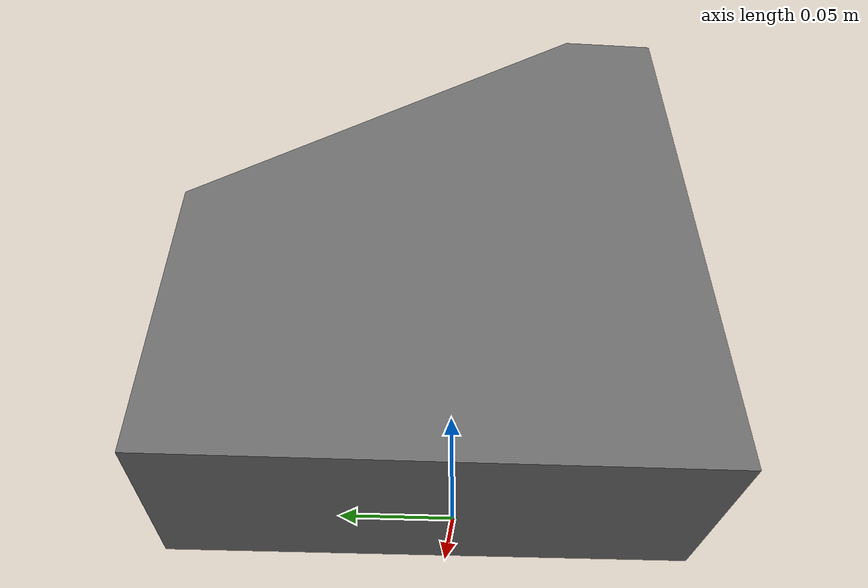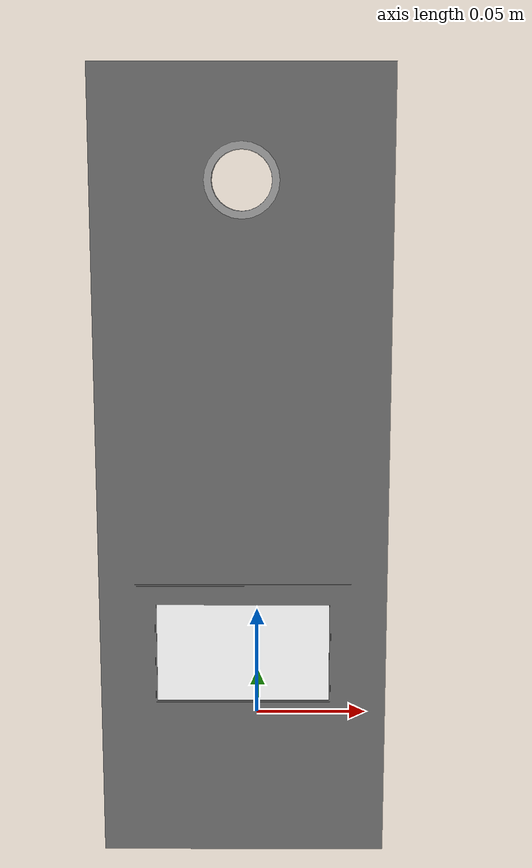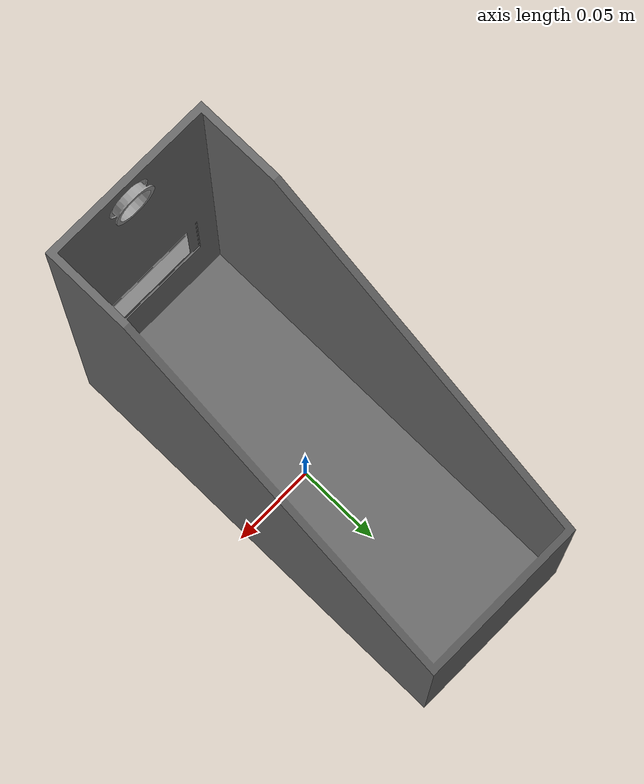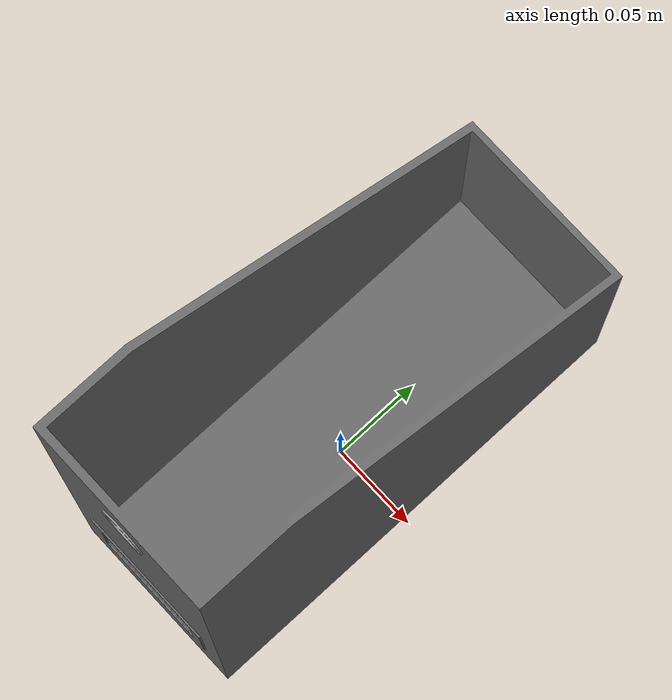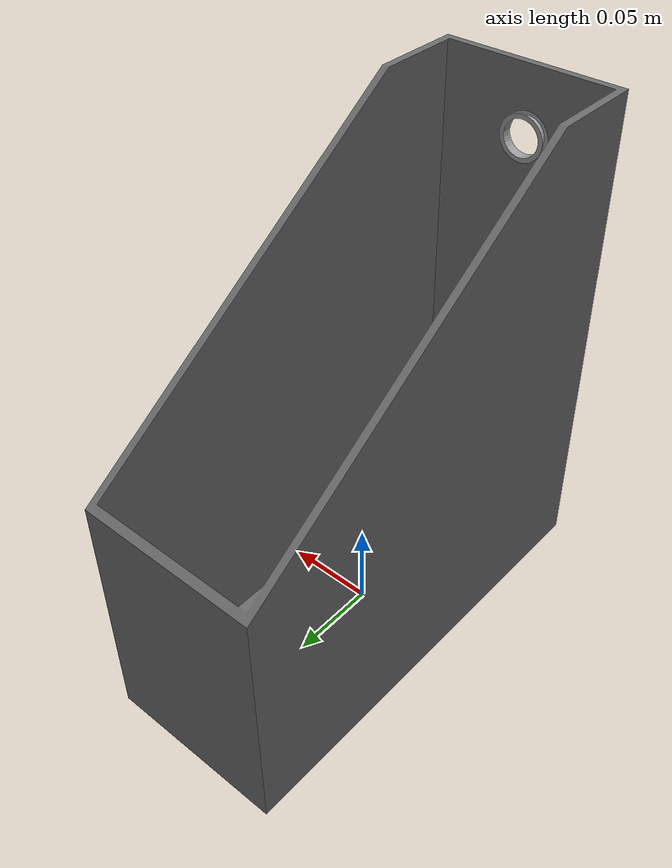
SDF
<?xml version='1.0'?>
<sdf version='1.6'>
  <model name='file_box_4'>
    <link name='link_6'>
       <visual name='visual'>
        <pose frame=''>0 0 -0.003306 0 -0 0</pose>
        <geometry>
          <mesh>
            <uri>model://file_box_4/meshes/body.dae</uri>
            <scale>1 1 1</scale>
          </mesh>
        </geometry>
         <material>
          <script>
            <uri>model://file_box_4/materials/scripts</uri>
            <uri>model://file_box_4/materials/textures</uri>
            <name>file_box</name>
          </script>
        </material>
        <cast_shadows>1</cast_shadows>
        <transparency>0</transparency>
      </visual>
      <collision name='collision'>
        <laser_retro>0</laser_retro>
        <max_contacts>10</max_contacts>
        <pose frame=''>0 0 0 0 -0 0</pose>
        <geometry>
          <mesh>
            <uri>model://file_box_4/meshes/body.dae</uri>
            <scale>1 1 1</scale>
          </mesh>
        </geometry>
       </collision>
    </link>
    <link name='link_7'>
       <visual name='visual'>
        <pose frame=''>0 0 -0.003306 0 -0 0</pose>
        <geometry>
          <mesh>
            <uri>model://file_box_4/meshes/ring.dae</uri>
            <scale>1 1 1</scale>
          </mesh>
        </geometry>
        <material>
          <lighting>1</lighting>
          <script>
            <uri>file://media/materials/scripts/gazebo.material</uri>
            <name>Gazebo/Grey</name>
          </script>
          <ambient>0.3 0.3 0.3 1</ambient>
          <diffuse>0.7 0.7 0.7 1</diffuse>
          <specular>0.01 0.01 0.01 1</specular>
          <emissive>0 0 0 1</emissive>
        </material>
        <cast_shadows>1</cast_shadows>
        <transparency>0</transparency>
      </visual>
      <collision name='collision'>
        <laser_retro>0</laser_retro>
        <max_contacts>10</max_contacts>
        <pose frame=''>0 0 0 0 -0 0</pose>
        <geometry>
          <mesh>
            <uri>model://file_box_4/meshes/ring.dae</uri>
            <scale>1 1 1</scale>
          </mesh>
        </geometry>
      </collision>
    </link>
    <link name='link_8'>
        <visual name='visual'>
        <pose frame=''>0 0 -0.003306 0 -0 0</pose>
        <geometry>
          <mesh>
            <uri>model://file_box_4/meshes/tag.dae</uri>
            <scale>1 1 1</scale>
          </mesh>
        </geometry>
        <material>
          <lighting>1</lighting>
           <ambient>1 1 1 1</ambient>
          <diffuse>1 1 1 1</diffuse>
          <specular>0.01 0.01 0.01 1</specular>
          <emissive>0 0 0 1</emissive>
        </material>
        <cast_shadows>1</cast_shadows>
        <transparency>0</transparency>
      </visual>
      <collision name='collision'>
        <laser_retro>0</laser_retro>
        <max_contacts>10</max_contacts>
        <pose frame=''>0 0 0 0 -0 0</pose>
        <geometry>
          <mesh>
            <uri>model://file_box_4/meshes/tag.dae</uri>
            <scale>1 1 1</scale>
          </mesh>
        </geometry>
      </collision>
    </link>
    <static>1</static>
    <allow_auto_disable>1</allow_auto_disable>
  </model>
</sdf>
